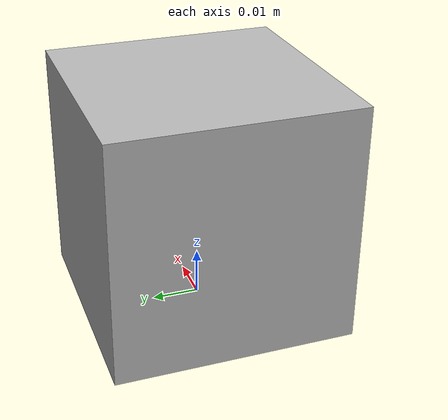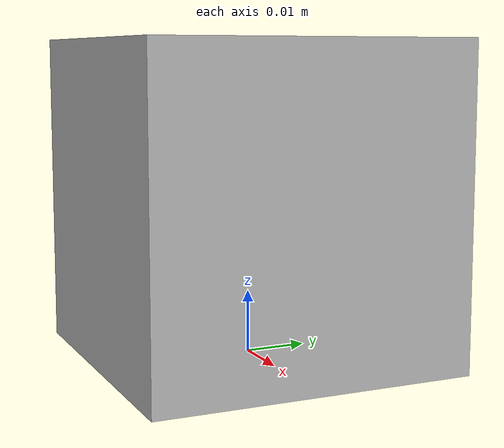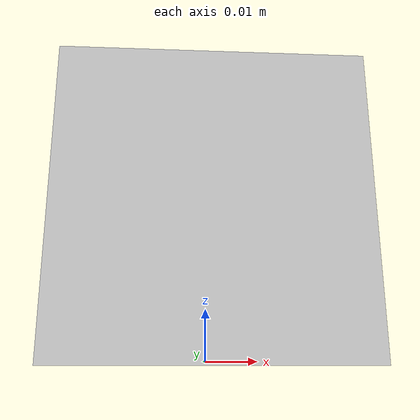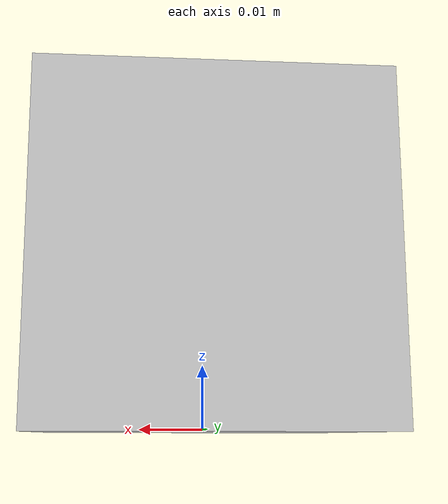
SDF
<?xml version="1.0" ?>
<sdf version="1.4">
  <model name="wood_cube">
    <pose>0 0 0.025 0 0 0</pose>
    <static>false</static>
    <link name="body">
      <inertial>
        <pose>0 0 0 0 0 0</pose>
        <mass>100</mass>
        <inertia>
          <ixx>0.0563854797</ixx>
          <ixy>0e-2</ixy>
          <ixz>0e-2</ixz>
          <iyy>0.0563854797</iyy>
          <iyz>0e-2</iyz>
          <izz>0.0563854797</izz>
        </inertia>
      </inertial>
      <visual name="visual">
        <cast_shadows>true</cast_shadows>
        <geometry>
         <mesh>
           <uri>model://wood_cube/meshes/wood_cube.dae</uri>
         </mesh>
        </geometry>
      </visual>
      <collision name="collision">
        <surface>
          <friction>
            <ode>
              <mu>100</mu>
              <mu2>100</mu2>
            </ode>
          </friction>
        </surface>
        <geometry>
          <box>
            <size>0.0508 0.0508 0.0508</size>
          </box>
        </geometry>
      </collision>
    </link>
  </model>
</sdf>
